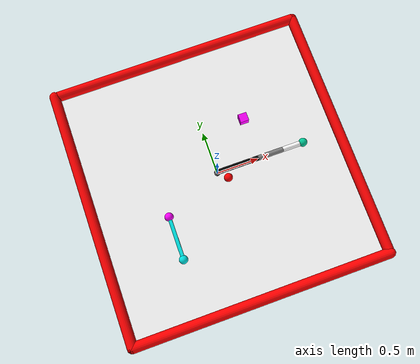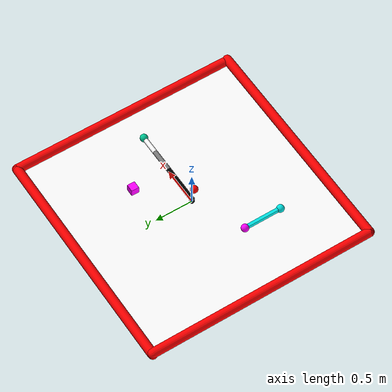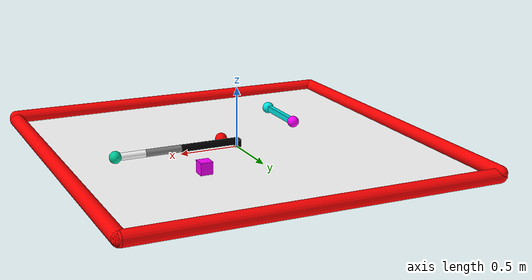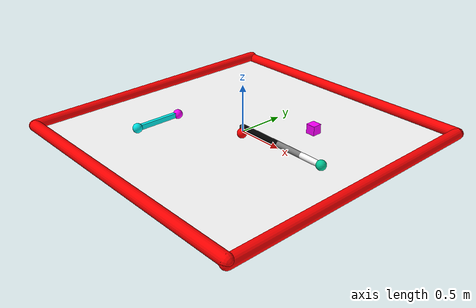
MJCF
<mujoco model="reacher">
	<compiler angle="radian" inertiafromgeom="true"/>
	<default>
		<joint armature="1" damping="1" limited="true"/>
		<geom contype="0" friction="1 0.1 0.1" rgba="0.7 0.7 0 1"/>
	</default>
	<option gravity="0 0 -9.81" integrator="RK4" timestep="0.01"/>
	<worldbody>
		<!-- Arena -->
		<geom conaffinity="0" contype="0" name="ground" pos="0 0 0" rgba="2 2 2 1" size="1.5 1.5 10" type="plane"/>
		<geom conaffinity="0" fromto="-1.5 -1.5 .01 1.5 -1.5 .03" name="sideS" rgba="2 0 0 1" size=".06" type="capsule"/>
		<geom conaffinity="0" fromto=" 1.5 -1.5 .01 1.5  1.5 .03" name="sideE" rgba="2 0 0 1" size=".06" type="capsule"/>
		<geom conaffinity="0" fromto="-1.5  1.5 .01 1.5  1.5 .03" name="sideN" rgba="2 0 0 1" size=".06" type="capsule"/>
		<geom conaffinity="0" fromto="-1.5 -1.5 .01 -1.5 1.5 .03" name="sideW" rgba="2 0 0 1" size=".06" type="capsule"/>
		<!-- Arm -->
		<geom conaffinity="0" contype="0" fromto="0 0 0 0 0 0.06" name="root" rgba="0 0 0 1" size=".033" type="cylinder"/>
		<body name="body0" pos="0 0 .05">
			<geom fromto="0 0 0 0.5 0 0" name="link0" rgba="0 0 0 1" size=".03" type="capsule"/>
			<joint axis="0 0 1" limited="false" name="joint0" pos="0 0 0" range='-3.15 3.15' type="hinge"/>
			<body name="body1" pos="0.5 0 0">
				<joint axis="0 0 1" limited="true" name="joint1" pos="0 0 0" range="-3.15 3.15" type="hinge"/>
				<geom fromto="0 0 0 0.3 0 0" name="link1" rgba="0.5 0.5 0.5  1" size=".03" type="capsule"/>
                <body name="body2" pos="0.3 0 0">
                    <joint axis="0 0 1" limited="true" name="joint2" pos="0 0 0" range="-3.15 3.15" type="hinge"/>
                    <geom fromto="0 0 0 0.2 0 0" name="link2" rgba="1 1 1 1" size=".03" type="capsule"/>
                    <body name="fingertip" pos="0.25 0 0">
                        <geom contype="0" name="fingertip" pos="0 0 0" rgba="0.0 0.8 0.6 1" size=".05" type="sphere"/>
                    </body>
                </body>
			</body>
		</body>
		<!-- Target -->
		<body name="target" pos=".1 -.1 .05">
			<joint armature="0" axis="1 0 0" damping="0" limited="true" name="target_x" pos="0 0 0" range="-1.5 1.5" ref=".1" stiffness="0" type="slide"/>
			<joint armature="0" axis="0 1 0" damping="0" limited="true" name="target_y" pos="0 0 0" range="-1.5 1.5" ref="-.1" stiffness="0" type="slide"/>
			<geom conaffinity="0" contype="0" name="target" pos="0 0 0" rgba="2 0 0 1" size=".05" type="sphere"/>
		</body>
        <!-- Stick -->
		<body name="stick" pos="-.68 -.55 .05">
            <freejoint/>
            <geom type="box" size=".02 .25 .025" rgba="0 .9 .9 1"/>
            <body name="stick_start" pos="0 -.25 0">
                <geom contype="0" name="stick_start" pos="0 0 0" rgba="0 .9 .9 1" size=".05" type="sphere"/>
            </body>
            <body name="stick_tip" pos="0 .25 0">
                <geom contype="0" name="stick_tip" pos="0 0 0" rgba="1 0 1 1" size=".05" type="sphere"/>
            </body>
        </body>
        <!-- Object -->
		<body name="object" pos=".5 .5 .05">
            <freejoint/>
            <geom type="box" size=".05 .05 .05" rgba="1 0 1 1"/>
        </body>
	</worldbody>
	<actuator>
		<motor ctrllimited="true" ctrlrange="-1.0 1.0" gear="200.0" joint="joint0"/>
		<motor ctrllimited="true" ctrlrange="-1.0 1.0" gear="200.0" joint="joint1"/>
        <motor ctrllimited="true" ctrlrange="-1.0 1.0" gear="200.0" joint="joint2"/>
	</actuator>
</mujoco>
